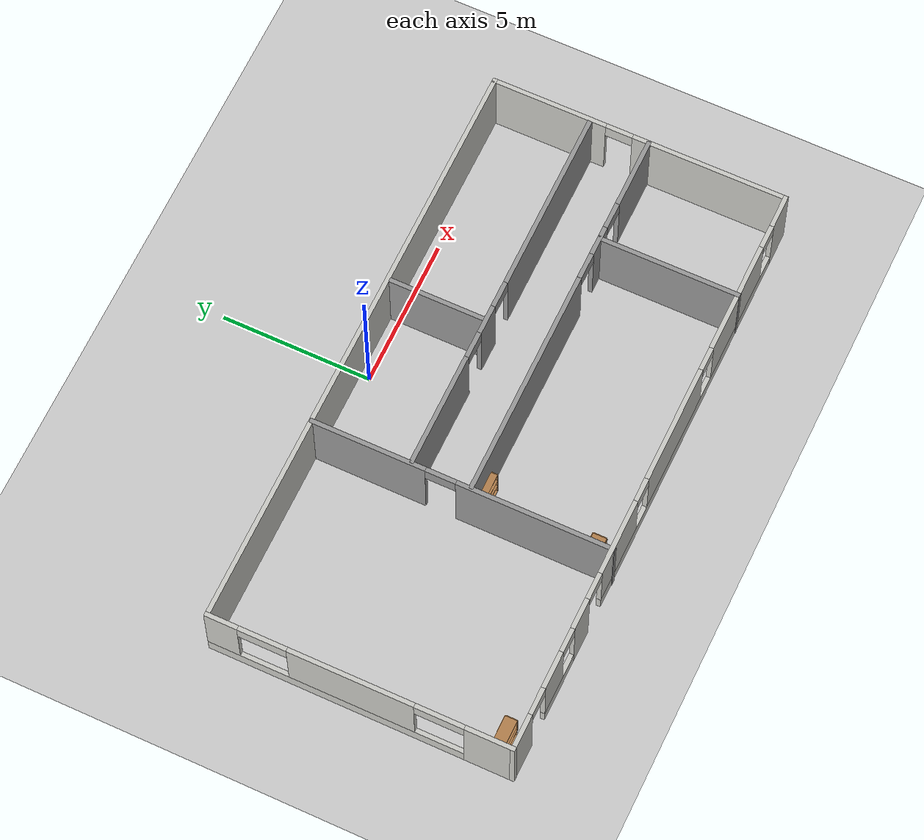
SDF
<sdf version="1.6">
 <world name="default">
  <model name="ground_plane">
   <static>1</static>
   <link name="link">
    <collision name="collision">
     <geometry><plane><normal>0 0 1</normal><size>100 100</size></plane></geometry>
     <surface><friction><ode><mu>100</mu><mu2>50</mu2></ode></friction></surface>
    </collision>
    <visual name="visual">
     <cast_shadows>0</cast_shadows>
     <geometry><plane><normal>0 0 1</normal><size>100 100</size></plane></geometry>
     <material>
      <script><uri>file://media/materials/scripts/gazebo.material</uri><name>Gazebo/Grey</name></script>
     </material>
    </visual>
   </link>
  </model>
  <model name="bookshelf">
   <static>1</static>
   <link name="link">
    <inertial><mass>1</mass></inertial>
    <collision name="back">
     <pose>0 0.005 0.6 0 -0 0</pose>
     <geometry><box><size>0.9 0.01 1.2</size></box></geometry>
    </collision>
    <visual name="visual1">
     <pose>0 0.005 0.6 0 -0 0</pose>
     <geometry><box><size>0.9 0.01 1.2</size></box></geometry>
     <material>
      <script><uri>file://media/materials/scripts/gazebo.material</uri><name>Gazebo/Wood</name></script>
     </material>
    </visual>
    <collision name="left_side">
     <pose>0.45 -0.195 0.6 0 -0 0</pose>
     <geometry><box><size>0.02 0.4 1.2</size></box></geometry>
    </collision>
    <visual name="visual2">
     <pose>0.45 -0.195 0.6 0 -0 0</pose>
     <geometry><box><size>0.02 0.4 1.2</size></box></geometry>
     <material>
      <script><uri>file://media/materials/scripts/gazebo.material</uri><name>Gazebo/Wood</name></script>
     </material>
    </visual>
    <collision name="right_side">
     <pose>-0.45 -0.195 0.6 0 -0 0</pose>
     <geometry><box><size>0.02 0.4 1.2</size></box></geometry>
    </collision>
    <visual name="visual3">
     <pose>-0.45 -0.195 0.6 0 -0 0</pose>
     <geometry><box><size>0.02 0.4 1.2</size></box></geometry>
     <material>
      <script><uri>file://media/materials/scripts/gazebo.material</uri><name>Gazebo/Wood</name></script>
     </material>
    </visual>
    <collision name="bottom">
     <pose>0 -0.195 0.03 0 -0 0</pose>
     <geometry><box><size>0.88 0.4 0.06</size></box></geometry>
    </collision>
    <visual name="visual4">
     <pose>0 -0.195 0.03 0 -0 0</pose>
     <geometry><box><size>0.88 0.4 0.06</size></box></geometry>
     <material>
      <script><uri>file://media/materials/scripts/gazebo.material</uri><name>Gazebo/Wood</name></script>
     </material>
    </visual>
    <collision name="top">
     <pose>0 -0.195 1.19 0 -0 0</pose>
     <geometry><box><size>0.88 0.4 0.02</size></box></geometry>
    </collision>
    <visual name="visual5">
     <pose>0 -0.195 1.19 0 -0 0</pose>
     <geometry><box><size>0.88 0.4 0.02</size></box></geometry>
     <material>
      <script><uri>file://media/materials/scripts/gazebo.material</uri><name>Gazebo/Wood</name></script>
     </material>
    </visual>
    <collision name="low_shelf">
     <pose>0 -0.195 0.43 0 -0 0</pose>
     <geometry><box><size>0.88 0.4 0.02</size></box></geometry>
    </collision>
    <visual name="visual6">
     <pose>0 -0.195 0.43 0 -0 0</pose>
     <geometry><box><size>0.88 0.4 0.02</size></box></geometry>
     <material>
      <script><uri>file://media/materials/scripts/gazebo.material</uri><name>Gazebo/Wood</name></script>
     </material>
    </visual>
    <collision name="high_shelf">
     <pose>0 -0.195 0.8 0 -0 0</pose>
     <geometry><box><size>0.88 0.4 0.02</size></box></geometry>
    </collision>
    <visual name="visual7">
     <pose>0 -0.195 0.8 0 -0 0</pose>
     <geometry><box><size>0.88 0.4 0.02</size></box></geometry>
     <material>
      <script><uri>file://media/materials/scripts/gazebo.material</uri><name>Gazebo/Wood</name></script>
     </material>
    </visual>
   </link>
   <pose>-2.20152 -4.78849 0 0 -0 0</pose>
  </model>
  <model name="bookshelf_0">
   <static>1</static>
   <link name="link">
    <inertial><mass>1</mass></inertial>
    <collision name="back">
     <pose>0 0.005 0.6 0 -0 0</pose>
     <geometry><box><size>0.9 0.01 1.2</size></box></geometry>
    </collision>
    <visual name="visual1">
     <pose>0 0.005 0.6 0 -0 0</pose>
     <geometry><box><size>0.9 0.01 1.2</size></box></geometry>
     <material>
      <script><uri>file://media/materials/scripts/gazebo.material</uri><name>Gazebo/Wood</name></script>
     </material>
    </visual>
    <collision name="left_side">
     <pose>0.45 -0.195 0.6 0 -0 0</pose>
     <geometry><box><size>0.02 0.4 1.2</size></box></geometry>
    </collision>
    <visual name="visual2">
     <pose>0.45 -0.195 0.6 0 -0 0</pose>
     <geometry><box><size>0.02 0.4 1.2</size></box></geometry>
     <material>
      <script><uri>file://media/materials/scripts/gazebo.material</uri><name>Gazebo/Wood</name></script>
     </material>
    </visual>
    <collision name="right_side">
     <pose>-0.45 -0.195 0.6 0 -0 0</pose>
     <geometry><box><size>0.02 0.4 1.2</size></box></geometry>
    </collision>
    <visual name="visual3">
     <pose>-0.45 -0.195 0.6 0 -0 0</pose>
     <geometry><box><size>0.02 0.4 1.2</size></box></geometry>
     <material>
      <script><uri>file://media/materials/scripts/gazebo.material</uri><name>Gazebo/Wood</name></script>
     </material>
    </visual>
    <collision name="bottom">
     <pose>0 -0.195 0.03 0 -0 0</pose>
     <geometry><box><size>0.88 0.4 0.06</size></box></geometry>
    </collision>
    <visual name="visual4">
     <pose>0 -0.195 0.03 0 -0 0</pose>
     <geometry><box><size>0.88 0.4 0.06</size></box></geometry>
     <material>
      <script><uri>file://media/materials/scripts/gazebo.material</uri><name>Gazebo/Wood</name></script>
     </material>
    </visual>
    <collision name="top">
     <pose>0 -0.195 1.19 0 -0 0</pose>
     <geometry><box><size>0.88 0.4 0.02</size></box></geometry>
    </collision>
    <visual name="visual5">
     <pose>0 -0.195 1.19 0 -0 0</pose>
     <geometry><box><size>0.88 0.4 0.02</size></box></geometry>
     <material>
      <script><uri>file://media/materials/scripts/gazebo.material</uri><name>Gazebo/Wood</name></script>
     </material>
    </visual>
    <collision name="low_shelf">
     <pose>0 -0.195 0.43 0 -0 0</pose>
     <geometry><box><size>0.88 0.4 0.02</size></box></geometry>
    </collision>
    <visual name="visual6">
     <pose>0 -0.195 0.43 0 -0 0</pose>
     <geometry><box><size>0.88 0.4 0.02</size></box></geometry>
     <material>
      <script><uri>file://media/materials/scripts/gazebo.material</uri><name>Gazebo/Wood</name></script>
     </material>
    </visual>
    <collision name="high_shelf">
     <pose>0 -0.195 0.8 0 -0 0</pose>
     <geometry><box><size>0.88 0.4 0.02</size></box></geometry>
    </collision>
    <visual name="visual7">
     <pose>0 -0.195 0.8 0 -0 0</pose>
     <geometry><box><size>0.88 0.4 0.02</size></box></geometry>
     <material>
      <script><uri>file://media/materials/scripts/gazebo.material</uri><name>Gazebo/Wood</name></script>
     </material>
    </visual>
   </link>
   <pose>-9.09779 -8.64012 0 0 -0 0</pose>
  </model>
  <model name="cabinet">
   <static>1</static>
   <link name="cabinet_bottom_plate">
    <inertial>
     <pose>0 0 -1 0 -0 0</pose>
     <inertia><ixx>2.05</ixx><ixy>0</ixy><ixz>0</ixz><iyy>2.05</iyy><iyz>0</iyz><izz>2.05</izz></inertia>
     <mass>25</mass>
    </inertial>
    <collision name="cabinet_bottom_plate_geom">
     <pose>0 0 0.01 0 -0 0</pose>
     <geometry><box><size>0.45 0.45 0.02</size></box></geometry>
    </collision>
    <visual name="cabinet_bottom_plate_geom_visual">
     <pose>0 0 0.01 0 -0 0</pose>
     <geometry><box><size>0.45 0.45 0.02</size></box></geometry>
     <material>
      <script><uri>file://media/materials/scripts/gazebo.material</uri><name>Gazebo/Wood</name></script>
     </material>
    </visual>
    <collision name="cabinet_bottom_plate_geom_cabinet_back_plate">
     <pose>0.235 0 0.51 0 -0 0</pose>
     <geometry><box><size>0.02 0.45 1.02</size></box></geometry>
    </collision>
    <visual name="cabinet_bottom_plate_geom_cabinet_back_plate_visual">
     <pose>0.235 0 0.51 0 -0 0</pose>
     <geometry><box><size>0.02 0.45 1.02</size></box></geometry>
     <material>
      <script><uri>file://media/materials/scripts/gazebo.material</uri><name>Gazebo/Wood</name></script>
     </material>
    </visual>
    <collision name="cabinet_bottom_plate_geom_cabinet_left_plate">
     <pose>0 0.235 0.51 0 -0 0</pose>
     <geometry><box><size>0.45 0.02 1.02</size></box></geometry>
    </collision>
    <visual name="cabinet_bottom_plate_geom_cabinet_left_plate_visual">
     <pose>0 0.235 0.51 0 -0 0</pose>
     <geometry><box><size>0.45 0.02 1.02</size></box></geometry>
     <material>
      <script><uri>file://media/materials/scripts/gazebo.material</uri><name>Gazebo/Wood</name></script>
     </material>
    </visual>
    <collision name="cabinet_bottom_plate_geom_cabinet_middle_plate">
     <pose>0 0 0.51 0 -0 0</pose>
     <geometry><box><size>0.45 0.45 0.02</size></box></geometry>
    </collision>
    <visual name="cabinet_bottom_plate_geom_cabinet_middle_plate_visual">
     <pose>0 0 0.51 0 -0 0</pose>
     <geometry><box><size>0.45 0.45 0.02</size></box></geometry>
     <material>
      <script><uri>file://media/materials/scripts/gazebo.material</uri><name>Gazebo/Wood</name></script>
     </material>
    </visual>
    <collision name="cabinet_bottom_plate_geom_cabinet_right_plate">
     <pose>0 -0.235 0.51 0 -0 0</pose>
     <geometry><box><size>0.45 0.02 1.02</size></box></geometry>
    </collision>
    <visual name="cabinet_bottom_plate_geom_cabinet_right_plate_visual">
     <pose>0 -0.235 0.51 0 -0 0</pose>
     <geometry><box><size>0.45 0.02 1.02</size></box></geometry>
     <material>
      <script><uri>file://media/materials/scripts/gazebo.material</uri><name>Gazebo/Wood</name></script>
     </material>
    </visual>
    <collision name="cabinet_bottom_plate_geom_cabinet_top_plate">
     <pose>0 0 1.01 0 -0 0</pose>
     <geometry><box><size>0.45 0.45 0.02</size></box></geometry>
    </collision>
    <visual name="cabinet_bottom_plate_geom_cabinet_top_plate_visual">
     <pose>0 0 1.01 0 -0 0</pose>
     <geometry><box><size>0.45 0.45 0.02</size></box></geometry>
     <material>
      <script><uri>file://media/materials/scripts/gazebo.material</uri><name>Gazebo/Wood</name></script>
     </material>
    </visual>
   </link>
   <pose>-2.4243 -8.75166 0 0 -0 0</pose>
  </model>
  <model name="Building">
   <pose>-0.010018 -4.56874 0 0 -0 0</pose>
   <link name="Wall_0">
    <pose>-9.925 0.012573 0 0 -0 1.5708</pose>
    <visual name="Wall_0_Visual_0">
     <pose>-4.19143 0 1.25 0 -0 0</pose>
     <geometry><box><size>1.61715 0.15 2.5</size></box></geometry>
     <material>
      <script><uri>file://media/materials/scripts/gazebo.material</uri><name>Gazebo/CeilingTiled</name></script>
      <ambient>1 1 1 1</ambient>
     </material>
     <meta><layer>0</layer></meta>
    </visual>
    <collision name="Wall_0_Collision_0">
     <geometry><box><size>1.61715 0.15 2.5</size></box></geometry>
     <pose>-4.19143 0 1.25 0 -0 0</pose>
    </collision>
    <visual name="Wall_0_Visual_1">
     <pose>0.808574 0 0.25 0 -0 0</pose>
     <geometry><box><size>8.38285 0.15 0.5</size></box></geometry>
     <material>
      <script><uri>file://media/materials/scripts/gazebo.material</uri><name>Gazebo/CeilingTiled</name></script>
      <ambient>1 1 1 1</ambient>
     </material>
     <meta><layer>0</layer></meta>
    </visual>
    <collision name="Wall_0_Collision_1">
     <geometry><box><size>8.38285 0.15 0.5</size></box></geometry>
     <pose>0.808574 0 0.25 0 -0 0</pose>
    </collision>
    <visual name="Wall_0_Visual_2">
     <pose>0.268788 0 1.5 0 -0 0</pose>
     <geometry><box><size>4.10328 0.15 2</size></box></geometry>
     <material>
      <script><uri>file://media/materials/scripts/gazebo.material</uri><name>Gazebo/CeilingTiled</name></script>
      <ambient>1 1 1 1</ambient>
     </material>
     <meta><layer>0</layer></meta>
    </visual>
    <collision name="Wall_0_Collision_2">
     <geometry><box><size>4.10328 0.15 2</size></box></geometry>
     <pose>0.268788 0 1.5 0 -0 0</pose>
    </collision>
    <visual name="Wall_0_Visual_3">
     <pose>4.46021 0 1.5 0 -0 0</pose>
     <geometry><box><size>1.07957 0.15 2</size></box></geometry>
     <material>
      <script><uri>file://media/materials/scripts/gazebo.material</uri><name>Gazebo/CeilingTiled</name></script>
      <ambient>1 1 1 1</ambient>
     </material>
     <meta><layer>0</layer></meta>
    </visual>
    <collision name="Wall_0_Collision_3">
     <geometry><box><size>1.07957 0.15 2</size></box></geometry>
     <pose>4.46021 0 1.5 0 -0 0</pose>
    </collision>
    <visual name="Wall_0_Visual_4">
     <pose>-2.58285 0 2.25 0 -0 0</pose>
     <geometry><box><size>1.6 0.15 0.5</size></box></geometry>
     <material>
      <script><uri>file://media/materials/scripts/gazebo.material</uri><name>Gazebo/CeilingTiled</name></script>
      <ambient>1 1 1 1</ambient>
     </material>
     <meta><layer>0</layer></meta>
    </visual>
    <collision name="Wall_0_Collision_4">
     <geometry><box><size>1.6 0.15 0.5</size></box></geometry>
     <pose>-2.58285 0 2.25 0 -0 0</pose>
    </collision>
    <visual name="Wall_0_Visual_5">
     <pose>3.12043 0 2.25 0 -0 0</pose>
     <geometry><box><size>1.6 0.15 0.5</size></box></geometry>
     <material>
      <script><uri>file://media/materials/scripts/gazebo.material</uri><name>Gazebo/CeilingTiled</name></script>
      <ambient>1 1 1 1</ambient>
     </material>
     <meta><layer>0</layer></meta>
    </visual>
    <collision name="Wall_0_Collision_5">
     <geometry><box><size>1.6 0.15 0.5</size></box></geometry>
     <pose>3.12043 0 2.25 0 -0 0</pose>
    </collision>
   </link>
   <link name="Wall_1">
    <collision name="Wall_1_Collision">
     <geometry><box><size>20 0.15 2.5</size></box></geometry>
     <pose>0 0 1.25 0 -0 0</pose>
    </collision>
    <visual name="Wall_1_Visual">
     <pose>0 0 1.25 0 -0 0</pose>
     <geometry><box><size>20 0.15 2.5</size></box></geometry>
     <material>
      <script><uri>file://media/materials/scripts/gazebo.material</uri><name>Gazebo/CeilingTiled</name></script>
      <ambient>1 1 1 1</ambient>
     </material>
     <meta><layer>0</layer></meta>
    </visual>
    <pose>0 4.93757 0 0 -0 0</pose>
   </link>
   <link name="Wall_11">
    <collision name="Wall_11_Collision">
     <geometry><box><size>3.25 0.15 2.5</size></box></geometry>
     <pose>0 0 1.25 0 -0 0</pose>
    </collision>
    <visual name="Wall_11_Visual">
     <pose>0 0 1.25 0 -0 0</pose>
     <geometry><box><size>3.25 0.15 2.5</size></box></geometry>
     <material>
      <script><uri>file://media/materials/scripts/gazebo.material</uri><name>Gazebo/Grey</name></script>
      <ambient>1 1 1 1</ambient>
     </material>
     <meta><layer>0</layer></meta>
    </visual>
    <pose>2.242 3.25338 0 0 -0 1.5708</pose>
   </link>
   <link name="Wall_13">
    <collision name="Wall_13_Collision">
     <geometry><box><size>4.75 0.15 2.5</size></box></geometry>
     <pose>0 0 1.25 0 -0 0</pose>
    </collision>
    <visual name="Wall_13_Visual">
     <pose>0 0 1.25 0 -0 0</pose>
     <geometry><box><size>4.75 0.15 2.5</size></box></geometry>
     <material>
      <script><uri>file://media/materials/scripts/gazebo.material</uri><name>Gazebo/Grey</name></script>
      <ambient>1 1 1 1</ambient>
     </material>
     <meta><layer>0</layer></meta>
    </visual>
    <pose>6.2419 -2.61938 0 0 0 -1.5708</pose>
   </link>
   <link name="Wall_2">
    <pose>9.925 0.012573 0 0 0 -1.5708</pose>
    <visual name="Wall_2_Visual_0">
     <pose>-3.05331 0 1.25 0 -0 0</pose>
     <geometry><box><size>3.89339 0.15 2.5</size></box></geometry>
     <material>
      <script><uri>file://media/materials/scripts/gazebo.material</uri><name>Gazebo/CeilingTiled</name></script>
      <ambient>1 1 1 1</ambient>
     </material>
     <meta><layer>0</layer></meta>
    </visual>
    <collision name="Wall_2_Collision_0">
     <geometry><box><size>3.89339 0.15 2.5</size></box></geometry>
     <pose>-3.05331 0 1.25 0 -0 0</pose>
    </collision>
    <visual name="Wall_2_Visual_1">
     <pose>2.39669 0 1.25 0 -0 0</pose>
     <geometry><box><size>5.20661 0.15 2.5</size></box></geometry>
     <material>
      <script><uri>file://media/materials/scripts/gazebo.material</uri><name>Gazebo/CeilingTiled</name></script>
      <ambient>1 1 1 1</ambient>
     </material>
     <meta><layer>0</layer></meta>
    </visual>
    <collision name="Wall_2_Collision_1">
     <geometry><box><size>5.20661 0.15 2.5</size></box></geometry>
     <pose>2.39669 0 1.25 0 -0 0</pose>
    </collision>
    <visual name="Wall_2_Visual_2">
     <pose>-0.656611 0 2.25 0 -0 0</pose>
     <geometry><box><size>0.9 0.15 0.5</size></box></geometry>
     <material>
      <script><uri>file://media/materials/scripts/gazebo.material</uri><name>Gazebo/CeilingTiled</name></script>
      <ambient>1 1 1 1</ambient>
     </material>
     <meta><layer>0</layer></meta>
    </visual>
    <collision name="Wall_2_Collision_2">
     <geometry><box><size>0.9 0.15 0.5</size></box></geometry>
     <pose>-0.656611 0 2.25 0 -0 0</pose>
    </collision>
   </link>
   <link name="Wall_3">
    <pose>0 -4.91243 0 0 -0 3.14159</pose>
    <visual name="Wall_3_Visual_0">
     <pose>-9.42358 0 1.25 0 -0 0</pose>
     <geometry><box><size>1.15283 0.15 2.5</size></box></geometry>
     <material>
      <script><uri>file://media/materials/scripts/gazebo.material</uri><name>Gazebo/CeilingTiled</name></script>
      <ambient>1 1 1 1</ambient>
     </material>
     <meta><layer>0</layer></meta>
    </visual>
    <collision name="Wall_3_Collision_0">
     <geometry><box><size>1.15283 0.15 2.5</size></box></geometry>
     <pose>-9.42358 0 1.25 0 -0 0</pose>
    </collision>
    <visual name="Wall_3_Visual_1">
     <pose>5.29612 0 1.25 0 -0 0</pose>
     <geometry><box><size>1.03588 0.15 2.5</size></box></geometry>
     <material>
      <script><uri>file://media/materials/scripts/gazebo.material</uri><name>Gazebo/CeilingTiled</name></script>
      <ambient>1 1 1 1</ambient>
     </material>
     <meta><layer>0</layer></meta>
    </visual>
    <collision name="Wall_3_Collision_1">
     <geometry><box><size>1.03588 0.15 2.5</size></box></geometry>
     <pose>5.29612 0 1.25 0 -0 0</pose>
    </collision>
    <visual name="Wall_3_Visual_2">
     <pose>9.38144 0 1.25 0 -0 0</pose>
     <geometry><box><size>1.23713 0.15 2.5</size></box></geometry>
     <material>
      <script><uri>file://media/materials/scripts/gazebo.material</uri><name>Gazebo/CeilingTiled</name></script>
      <ambient>1 1 1 1</ambient>
     </material>
     <meta><layer>0</layer></meta>
    </visual>
    <collision name="Wall_3_Collision_2">
     <geometry><box><size>1.23713 0.15 2.5</size></box></geometry>
     <pose>9.38144 0 1.25 0 -0 0</pose>
    </collision>
    <visual name="Wall_3_Visual_3">
     <pose>-2.48449 0 0.25 0 -0 0</pose>
     <geometry><box><size>12.7254 0.15 0.5</size></box></geometry>
     <material>
      <script><uri>file://media/materials/scripts/gazebo.material</uri><name>Gazebo/CeilingTiled</name></script>
      <ambient>1 1 1 1</ambient>
     </material>
     <meta><layer>0</layer></meta>
    </visual>
    <collision name="Wall_3_Collision_3">
     <geometry><box><size>12.7254 0.15 0.5</size></box></geometry>
     <pose>-2.48449 0 0.25 0 -0 0</pose>
    </collision>
    <visual name="Wall_3_Visual_4">
     <pose>6.83847 0 0.25 0 -0 0</pose>
     <geometry><box><size>2.04881 0.15 0.5</size></box></geometry>
     <material>
      <script><uri>file://media/materials/scripts/gazebo.material</uri><name>Gazebo/CeilingTiled</name></script>
      <ambient>1 1 1 1</ambient>
     </material>
     <meta><layer>0</layer></meta>
    </visual>
    <collision name="Wall_3_Collision_4">
     <geometry><box><size>2.04881 0.15 0.5</size></box></geometry>
     <pose>6.83847 0 0.25 0 -0 0</pose>
    </collision>
    <visual name="Wall_3_Visual_5">
     <pose>-6.15065 0 1.5 0 -0 0</pose>
     <geometry><box><size>3.79304 0.15 2</size></box></geometry>
     <material>
      <script><uri>file://media/materials/scripts/gazebo.material</uri><name>Gazebo/CeilingTiled</name></script>
      <ambient>1 1 1 1</ambient>
     </material>
     <meta><layer>0</layer></meta>
    </visual>
    <collision name="Wall_3_Collision_5">
     <geometry><box><size>3.79304 0.15 2</size></box></geometry>
     <pose>-6.15065 0 1.5 0 -0 0</pose>
    </collision>
    <visual name="Wall_3_Visual_6">
     <pose>-1.46635 0 1.5 0 -0 0</pose>
     <geometry><box><size>3.97555 0.15 2</size></box></geometry>
     <material>
      <script><uri>file://media/materials/scripts/gazebo.material</uri><name>Gazebo/CeilingTiled</name></script>
      <ambient>1 1 1 1</ambient>
     </material>
     <meta><layer>0</layer></meta>
    </visual>
    <collision name="Wall_3_Collision_6">
     <geometry><box><size>3.97555 0.15 2</size></box></geometry>
     <pose>-1.46635 0 1.5 0 -0 0</pose>
    </collision>
    <visual name="Wall_3_Visual_7">
     <pose>2.5998 0 1.5 0 -0 0</pose>
     <geometry><box><size>2.55676 0.15 2</size></box></geometry>
     <material>
      <script><uri>file://media/materials/scripts/gazebo.material</uri><name>Gazebo/CeilingTiled</name></script>
      <ambient>1 1 1 1</ambient>
     </material>
     <meta><layer>0</layer></meta>
    </visual>
    <collision name="Wall_3_Collision_7">
     <geometry><box><size>2.55676 0.15 2</size></box></geometry>
     <pose>2.5998 0 1.5 0 -0 0</pose>
    </collision>
    <visual name="Wall_3_Visual_8">
     <pose>2.5998 0 1.5 0 -0 0</pose>
     <geometry><box><size>2.55676 0.15 2</size></box></geometry>
     <material>
      <script><uri>file://media/materials/scripts/gazebo.material</uri><name>Gazebo/CeilingTiled</name></script>
      <ambient>1 1 1 1</ambient>
     </material>
     <meta><layer>0</layer></meta>
    </visual>
    <collision name="Wall_3_Collision_8">
     <geometry><box><size>2.55676 0.15 2</size></box></geometry>
     <pose>2.5998 0 1.5 0 -0 0</pose>
    </collision>
    <visual name="Wall_3_Visual_9">
     <pose>7.23847 0 1.5 0 -0 0</pose>
     <geometry><box><size>1.24881 0.15 2</size></box></geometry>
     <material>
      <script><uri>file://media/materials/scripts/gazebo.material</uri><name>Gazebo/CeilingTiled</name></script>
      <ambient>1 1 1 1</ambient>
     </material>
     <meta><layer>0</layer></meta>
    </visual>
    <collision name="Wall_3_Collision_9">
     <geometry><box><size>1.24881 0.15 2</size></box></geometry>
     <pose>7.23847 0 1.5 0 -0 0</pose>
    </collision>
    <visual name="Wall_3_Visual_10">
     <pose>-8.44717 0 2.25 0 -0 0</pose>
     <geometry><box><size>0.8 0.15 0.5</size></box></geometry>
     <material>
      <script><uri>file://media/materials/scripts/gazebo.material</uri><name>Gazebo/CeilingTiled</name></script>
      <ambient>1 1 1 1</ambient>
     </material>
     <meta><layer>0</layer></meta>
    </visual>
    <collision name="Wall_3_Collision_10">
     <geometry><box><size>0.8 0.15 0.5</size></box></geometry>
     <pose>-8.44717 0 2.25 0 -0 0</pose>
    </collision>
    <visual name="Wall_3_Visual_11">
     <pose>6.21406 0 2.25 0 -0 0</pose>
     <geometry><box><size>0.8 0.15 0.5</size></box></geometry>
     <material>
      <script><uri>file://media/materials/scripts/gazebo.material</uri><name>Gazebo/CeilingTiled</name></script>
      <ambient>1 1 1 1</ambient>
     </material>
     <meta><layer>0</layer></meta>
    </visual>
    <collision name="Wall_3_Collision_11">
     <geometry><box><size>0.8 0.15 0.5</size></box></geometry>
     <pose>6.21406 0 2.25 0 -0 0</pose>
    </collision>
    <visual name="Wall_3_Visual_12">
     <pose>-3.85413 0 2.25 0 -0 0</pose>
     <geometry><box><size>0.8 0.15 0.5</size></box></geometry>
     <material>
      <script><uri>file://media/materials/scripts/gazebo.material</uri><name>Gazebo/CeilingTiled</name></script>
      <ambient>1 1 1 1</ambient>
     </material>
     <meta><layer>0</layer></meta>
    </visual>
    <collision name="Wall_3_Collision_12">
     <geometry><box><size>0.8 0.15 0.5</size></box></geometry>
     <pose>-3.85413 0 2.25 0 -0 0</pose>
    </collision>
    <visual name="Wall_3_Visual_13">
     <pose>0.92142 0 2.25 0 -0 0</pose>
     <geometry><box><size>0.8 0.15 0.5</size></box></geometry>
     <material>
      <script><uri>file://media/materials/scripts/gazebo.material</uri><name>Gazebo/CeilingTiled</name></script>
      <ambient>1 1 1 1</ambient>
     </material>
     <meta><layer>0</layer></meta>
    </visual>
    <collision name="Wall_3_Collision_13">
     <geometry><box><size>0.8 0.15 0.5</size></box></geometry>
     <pose>0.92142 0 2.25 0 -0 0</pose>
    </collision>
    <visual name="Wall_3_Visual_14">
     <pose>4.32818 0 2.25 0 -0 0</pose>
     <geometry><box><size>0.9 0.15 0.5</size></box></geometry>
     <material>
      <script><uri>file://media/materials/scripts/gazebo.material</uri><name>Gazebo/CeilingTiled</name></script>
      <ambient>1 1 1 1</ambient>
     </material>
     <meta><layer>0</layer></meta>
    </visual>
    <collision name="Wall_3_Collision_14">
     <geometry><box><size>0.9 0.15 0.5</size></box></geometry>
     <pose>4.32818 0 2.25 0 -0 0</pose>
    </collision>
    <visual name="Wall_3_Visual_15">
     <pose>4.32818 0 2.25 0 -0 0</pose>
     <geometry><box><size>0.9 0.15 0.5</size></box></geometry>
     <material>
      <script><uri>file://media/materials/scripts/gazebo.material</uri><name>Gazebo/CeilingTiled</name></script>
      <ambient>1 1 1 1</ambient>
     </material>
     <meta><layer>0</layer></meta>
    </visual>
    <collision name="Wall_3_Collision_15">
     <geometry><box><size>0.9 0.15 0.5</size></box></geometry>
     <pose>4.32818 0 2.25 0 -0 0</pose>
    </collision>
    <visual name="Wall_3_Visual_16">
     <pose>8.31287 0 2.25 0 -0 0</pose>
     <geometry><box><size>0.9 0.15 0.5</size></box></geometry>
     <material>
      <script><uri>file://media/materials/scripts/gazebo.material</uri><name>Gazebo/CeilingTiled</name></script>
      <ambient>1 1 1 1</ambient>
     </material>
     <meta><layer>0</layer></meta>
    </visual>
    <collision name="Wall_3_Collision_16">
     <geometry><box><size>0.9 0.15 0.5</size></box></geometry>
     <pose>8.31287 0 2.25 0 -0 0</pose>
    </collision>
   </link>
   <link name="Wall_5">
    <pose>-3.02023 -0.012574 0 0 0 -1.5708</pose>
    <visual name="Wall_5_Visual_0">
     <pose>-3.08327 0 1.25 0 -0 0</pose>
     <geometry><box><size>3.83345 0.15 2.5</size></box></geometry>
     <material>
      <script><uri>file://media/materials/scripts/gazebo.material</uri><name>Gazebo/Grey</name></script>
      <ambient>1 1 1 1</ambient>
     </material>
     <meta><layer>0</layer></meta>
    </visual>
    <collision name="Wall_5_Collision_0">
     <geometry><box><size>3.83345 0.15 2.5</size></box></geometry>
     <pose>-3.08327 0 1.25 0 -0 0</pose>
    </collision>
    <visual name="Wall_5_Visual_1">
     <pose>2.41673 0 1.25 0 -0 0</pose>
     <geometry><box><size>5.16655 0.15 2.5</size></box></geometry>
     <material>
      <script><uri>file://media/materials/scripts/gazebo.material</uri><name>Gazebo/Grey</name></script>
      <ambient>1 1 1 1</ambient>
     </material>
     <meta><layer>0</layer></meta>
    </visual>
    <collision name="Wall_5_Collision_1">
     <geometry><box><size>5.16655 0.15 2.5</size></box></geometry>
     <pose>2.41673 0 1.25 0 -0 0</pose>
    </collision>
    <visual name="Wall_5_Visual_2">
     <pose>-0.66655 0 2.25 0 -0 0</pose>
     <geometry><box><size>1 0.15 0.5</size></box></geometry>
     <material>
      <script><uri>file://media/materials/scripts/gazebo.material</uri><name>Gazebo/Grey</name></script>
      <ambient>1 1 1 1</ambient>
     </material>
     <meta><layer>0</layer></meta>
    </visual>
    <collision name="Wall_5_Collision_2">
     <geometry><box><size>1 0.15 0.5</size></box></geometry>
     <pose>-0.66655 0 2.25 0 -0 0</pose>
    </collision>
   </link>
   <link name="Wall_7">
    <pose>3.48082 1.64254 0 0 -0 0</pose>
    <visual name="Wall_7_Visual_0">
     <pose>-4.55828 0 1.25 0 -0 0</pose>
     <geometry><box><size>3.88345 0.15 2.5</size></box></geometry>
     <material>
      <script><uri>file://media/materials/scripts/gazebo.material</uri><name>Gazebo/Grey</name></script>
      <ambient>1 1 1 1</ambient>
     </material>
     <meta><layer>0</layer></meta>
    </visual>
    <collision name="Wall_7_Collision_0">
     <geometry><box><size>3.88345 0.15 2.5</size></box></geometry>
     <pose>-4.55828 0 1.25 0 -0 0</pose>
    </collision>
    <visual name="Wall_7_Visual_1">
     <pose>-1.22361 0 1.25 0 -0 0</pose>
     <geometry><box><size>0.985885 0.15 2.5</size></box></geometry>
     <material>
      <script><uri>file://media/materials/scripts/gazebo.material</uri><name>Gazebo/Grey</name></script>
      <ambient>1 1 1 1</ambient>
     </material>
     <meta><layer>0</layer></meta>
    </visual>
    <collision name="Wall_7_Collision_1">
     <geometry><box><size>0.985885 0.15 2.5</size></box></geometry>
     <pose>-1.22361 0 1.25 0 -0 0</pose>
    </collision>
    <visual name="Wall_7_Visual_2">
     <pose>3.33467 0 1.25 0 -0 0</pose>
     <geometry><box><size>6.33066 0.15 2.5</size></box></geometry>
     <material>
      <script><uri>file://media/materials/scripts/gazebo.material</uri><name>Gazebo/Grey</name></script>
      <ambient>1 1 1 1</ambient>
     </material>
     <meta><layer>0</layer></meta>
    </visual>
    <collision name="Wall_7_Collision_2">
     <geometry><box><size>6.33066 0.15 2.5</size></box></geometry>
     <pose>3.33467 0 1.25 0 -0 0</pose>
    </collision>
    <visual name="Wall_7_Visual_3">
     <pose>-2.16655 0 2.25 0 -0 0</pose>
     <geometry><box><size>0.9 0.15 0.5</size></box></geometry>
     <material>
      <script><uri>file://media/materials/scripts/gazebo.material</uri><name>Gazebo/Grey</name></script>
      <ambient>1 1 1 1</ambient>
     </material>
     <meta><layer>0</layer></meta>
    </visual>
    <collision name="Wall_7_Collision_3">
     <geometry><box><size>0.9 0.15 0.5</size></box></geometry>
     <pose>-2.16655 0 2.25 0 -0 0</pose>
    </collision>
    <visual name="Wall_7_Visual_4">
     <pose>-0.280665 0 2.25 0 -0 0</pose>
     <geometry><box><size>0.9 0.15 0.5</size></box></geometry>
     <material>
      <script><uri>file://media/materials/scripts/gazebo.material</uri><name>Gazebo/Grey</name></script>
      <ambient>1 1 1 1</ambient>
     </material>
     <meta><layer>0</layer></meta>
    </visual>
    <collision name="Wall_7_Collision_4">
     <geometry><box><size>0.9 0.15 0.5</size></box></geometry>
     <pose>-0.280665 0 2.25 0 -0 0</pose>
    </collision>
   </link>
   <link name="Wall_9">
    <pose>3.467 -0.319384 0 0 -0 3.14159</pose>
    <visual name="Wall_9_Visual_0">
     <pose>-5.2959 0 1.25 0 -0 0</pose>
     <geometry><box><size>2.4082 0.15 2.5</size></box></geometry>
     <material>
      <script><uri>file://media/materials/scripts/gazebo.material</uri><name>Gazebo/Grey</name></script>
      <ambient>1 1 1 1</ambient>
     </material>
     <meta><layer>0</layer></meta>
    </visual>
    <collision name="Wall_9_Collision_0">
     <geometry><box><size>2.4082 0.15 2.5</size></box></geometry>
     <pose>-5.2959 0 1.25 0 -0 0</pose>
    </collision>
    <visual name="Wall_9_Visual_1">
     <pose>-2.68365 0 1.25 0 -0 0</pose>
     <geometry><box><size>1.0163 0.15 2.5</size></box></geometry>
     <material>
      <script><uri>file://media/materials/scripts/gazebo.material</uri><name>Gazebo/Grey</name></script>
      <ambient>1 1 1 1</ambient>
     </material>
     <meta><layer>0</layer></meta>
    </visual>
    <collision name="Wall_9_Collision_1">
     <geometry><box><size>1.0163 0.15 2.5</size></box></geometry>
     <pose>-2.68365 0 1.25 0 -0 0</pose>
    </collision>
    <visual name="Wall_9_Visual_2">
     <pose>2.61225 0 1.25 0 -0 0</pose>
     <geometry><box><size>7.7755 0.15 2.5</size></box></geometry>
     <material>
      <script><uri>file://media/materials/scripts/gazebo.material</uri><name>Gazebo/Grey</name></script>
      <ambient>1 1 1 1</ambient>
     </material>
     <meta><layer>0</layer></meta>
    </visual>
    <collision name="Wall_9_Collision_2">
     <geometry><box><size>7.7755 0.15 2.5</size></box></geometry>
     <pose>2.61225 0 1.25 0 -0 0</pose>
    </collision>
    <visual name="Wall_9_Visual_3">
     <pose>-3.6418 0 2.25 0 -0 0</pose>
     <geometry><box><size>0.9 0.15 0.5</size></box></geometry>
     <material>
      <script><uri>file://media/materials/scripts/gazebo.material</uri><name>Gazebo/Grey</name></script>
      <ambient>1 1 1 1</ambient>
     </material>
     <meta><layer>0</layer></meta>
    </visual>
    <collision name="Wall_9_Collision_3">
     <geometry><box><size>0.9 0.15 0.5</size></box></geometry>
     <pose>-3.6418 0 2.25 0 -0 0</pose>
    </collision>
    <visual name="Wall_9_Visual_4">
     <pose>-1.7255 0 2.25 0 -0 0</pose>
     <geometry><box><size>0.9 0.15 0.5</size></box></geometry>
     <material>
      <script><uri>file://media/materials/scripts/gazebo.material</uri><name>Gazebo/Grey</name></script>
      <ambient>1 1 1 1</ambient>
     </material>
     <meta><layer>0</layer></meta>
    </visual>
    <collision name="Wall_9_Collision_4">
     <geometry><box><size>0.9 0.15 0.5</size></box></geometry>
     <pose>-1.7255 0 2.25 0 -0 0</pose>
    </collision>
   </link>
   <static>1</static>
  </model>
 </world>
</sdf>
